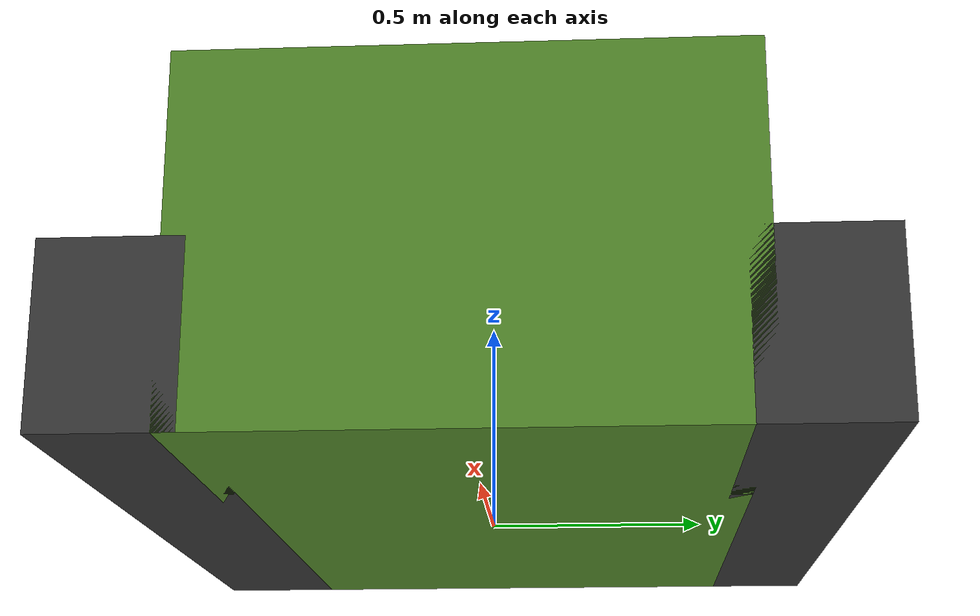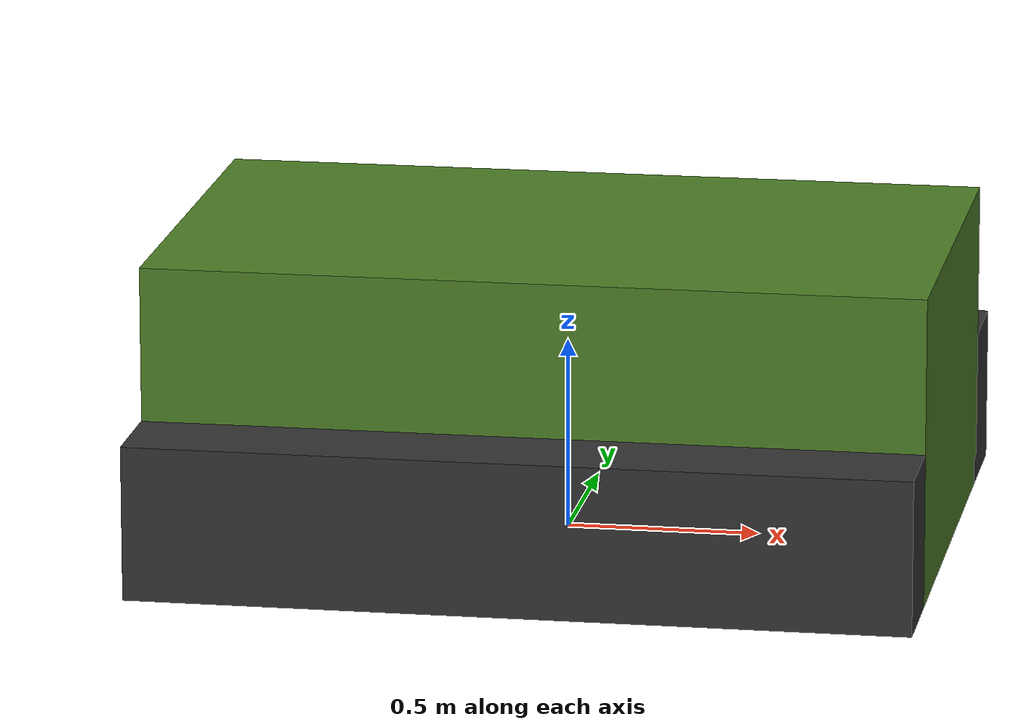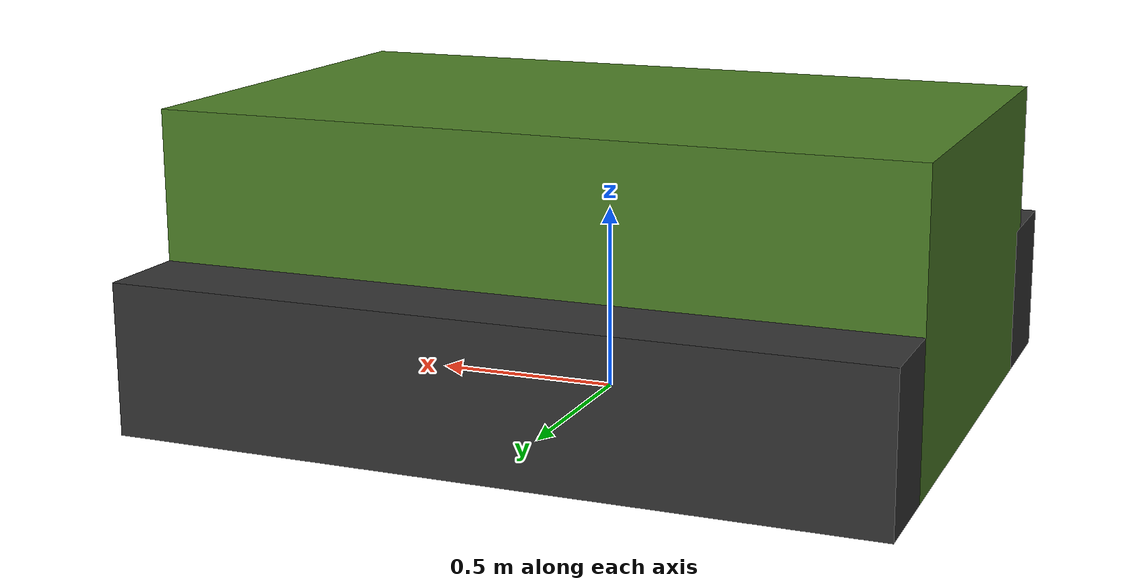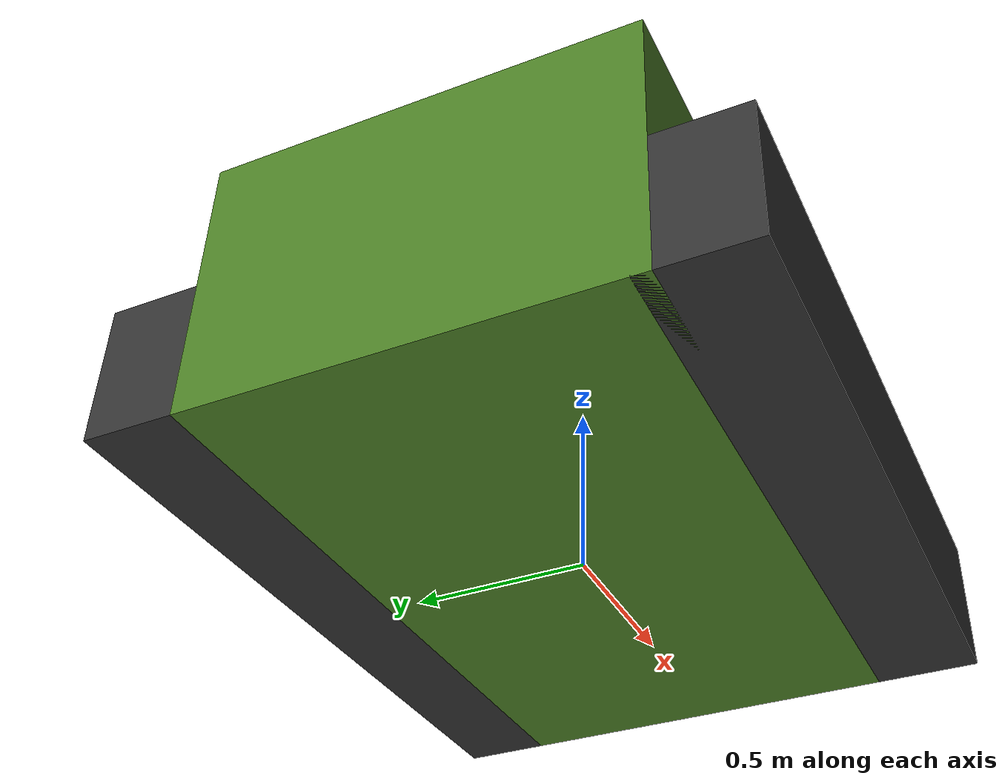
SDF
<?xml version="1.0"?>
<sdf version="1.9">
  <model name="tracked_vehicle">
    <static>false</static>

    <!-- ==================== 샤시 (차체) ==================== -->
    <link name="chassis">
      <pose>0 0 0.4 0 0 0</pose>
      <inertial>
        <mass>1000</mass>
        <inertia>
          <ixx>106.67</ixx>
          <iyy>353.33</iyy>
          <izz>426.67</izz>
          <ixy>0</ixy><ixz>0</ixz><iyz>0</iyz>
        </inertia>
      </inertial>
      <collision name="chassis_collision">
        <geometry>
          <box><size>2.0 1.2 0.8</size></box>
        </geometry>
      </collision>
      <visual name="chassis_visual">
        <geometry>
          <box><size>2.0 1.2 0.8</size></box>
        </geometry>
        <material>
          <ambient>0.2 0.4 0.1 1</ambient>
          <diffuse>0.3 0.5 0.15 1</diffuse>
        </material>
      </visual>

      <!-- ==================== 센서 ==================== -->

      <!-- NavSat (GPS) -->
      <sensor name="gps_sensor" type="navsat">
        <pose>0 0 0.4 0 0 0</pose>
        <always_on>true</always_on>
        <update_rate>10</update_rate>
        <topic>gps</topic>
        <navsat>
          <position_sensing>
            <horizontal>
              <noise type="gaussian">
                <mean>0</mean>
                <stddev>0.5</stddev>
              </noise>
            </horizontal>
            <vertical>
              <noise type="gaussian">
                <mean>0</mean>
                <stddev>1.0</stddev>
              </noise>
            </vertical>
          </position_sensing>
        </navsat>
      </sensor>

      <!-- IMU (bias 모델 추가) -->
      <sensor name="imu_sensor" type="imu">
        <pose>0 0 0 0 0 0</pose>
        <always_on>true</always_on>
        <update_rate>100</update_rate>
        <topic>imu</topic>
        <imu>
          <angular_velocity>
            <x>
              <noise type="gaussian">
                <mean>0</mean>
                <stddev>0.01</stddev>
                <bias_mean>0.0001</bias_mean>
                <bias_stddev>0.00001</bias_stddev>
                <dynamic_bias_stddev>0.00001</dynamic_bias_stddev>
                <dynamic_bias_correlation_time>300</dynamic_bias_correlation_time>
              </noise>
            </x>
            <y>
              <noise type="gaussian">
                <mean>0</mean>
                <stddev>0.01</stddev>
                <bias_mean>0.0001</bias_mean>
                <bias_stddev>0.00001</bias_stddev>
                <dynamic_bias_stddev>0.00001</dynamic_bias_stddev>
                <dynamic_bias_correlation_time>300</dynamic_bias_correlation_time>
              </noise>
            </y>
            <z>
              <noise type="gaussian">
                <mean>0</mean>
                <stddev>0.01</stddev>
                <bias_mean>0.0001</bias_mean>
                <bias_stddev>0.00001</bias_stddev>
                <dynamic_bias_stddev>0.00001</dynamic_bias_stddev>
                <dynamic_bias_correlation_time>300</dynamic_bias_correlation_time>
              </noise>
            </z>
          </angular_velocity>
          <linear_acceleration>
            <x>
              <noise type="gaussian">
                <mean>0</mean>
                <stddev>0.1</stddev>
                <bias_mean>0.01</bias_mean>
                <bias_stddev>0.001</bias_stddev>
                <dynamic_bias_stddev>0.001</dynamic_bias_stddev>
                <dynamic_bias_correlation_time>300</dynamic_bias_correlation_time>
              </noise>
            </x>
            <y>
              <noise type="gaussian">
                <mean>0</mean>
                <stddev>0.1</stddev>
                <bias_mean>0.01</bias_mean>
                <bias_stddev>0.001</bias_stddev>
                <dynamic_bias_stddev>0.001</dynamic_bias_stddev>
                <dynamic_bias_correlation_time>300</dynamic_bias_correlation_time>
              </noise>
            </y>
            <z>
              <noise type="gaussian">
                <mean>0</mean>
                <stddev>0.1</stddev>
                <bias_mean>0.01</bias_mean>
                <bias_stddev>0.001</bias_stddev>
                <dynamic_bias_stddev>0.001</dynamic_bias_stddev>
                <dynamic_bias_correlation_time>300</dynamic_bias_correlation_time>
              </noise>
            </z>
          </linear_acceleration>
        </imu>
      </sensor>

      <!-- 전방 카메라 (왜곡/노이즈 추가) -->
      <sensor name="front_camera" type="camera">
        <pose>1.0 0 0.5 0 0 0</pose>
        <always_on>true</always_on>
        <update_rate>15</update_rate>
        <topic>camera</topic>
        <camera>
          <horizontal_fov>1.3962634</horizontal_fov>
          <image>
            <width>640</width>
            <height>480</height>
            <format>R8G8B8</format>
          </image>
          <clip>
            <near>0.1</near>
            <far>100</far>
          </clip>
          <distortion>
            <k1>-0.25</k1>
            <k2>0.12</k2>
            <k3>0.0</k3>
            <p1>-0.00028</p1>
            <p2>-0.00005</p2>
            <center>0.5 0.5</center>
          </distortion>
          <noise>
            <type>gaussian</type>
            <mean>0</mean>
            <stddev>0.007</stddev>
          </noise>
          <camera_info_topic>camera_info</camera_info_topic>
        </camera>
      </sensor>

      <!-- LiDAR (노이즈 모델 추가) -->
      <sensor name="lidar_sensor" type="gpu_lidar">
        <pose>0.5 0 0.8 0 0 0</pose>
        <always_on>true</always_on>
        <update_rate>10</update_rate>
        <topic>lidar</topic>
        <lidar>
          <scan>
            <horizontal>
              <samples>360</samples>
              <resolution>1</resolution>
              <min_angle>-3.14159</min_angle>
              <max_angle>3.14159</max_angle>
            </horizontal>
            <vertical>
              <samples>16</samples>
              <resolution>1</resolution>
              <min_angle>-0.2618</min_angle>
              <max_angle>0.2618</max_angle>
            </vertical>
          </scan>
          <range>
            <min>0.3</min>
            <max>50</max>
            <resolution>0.01</resolution>
          </range>
          <noise>
            <type>gaussian</type>
            <mean>0</mean>
            <stddev>0.02</stddev>
          </noise>
        </lidar>
      </sensor>
    </link>

    <!-- ==================== 좌측 트랙 ==================== -->
    <link name="left_track">
      <pose>0 0.7 0.2 0 0 0</pose>
      <inertial>
        <mass>50</mass>
        <inertia>
          <ixx>1.04</ixx>
          <iyy>8.58</iyy>
          <izz>8.58</izz>
          <ixy>0</ixy><ixz>0</ixz><iyz>0</iyz>
        </inertia>
      </inertial>
      <collision name="left_track_collision">
        <geometry>
          <box><size>2.0 0.3 0.4</size></box>
        </geometry>
        <surface>
          <friction>
            <ode>
              <mu>1.0</mu>
              <mu2>1.0</mu2>
            </ode>
          </friction>
          <contact>
            <ode>
              <min_depth>0.01</min_depth>
            </ode>
          </contact>
        </surface>
      </collision>
      <visual name="left_track_visual">
        <geometry>
          <box><size>2.0 0.3 0.4</size></box>
        </geometry>
        <material>
          <ambient>0.1 0.1 0.1 1</ambient>
          <diffuse>0.2 0.2 0.2 1</diffuse>
        </material>
      </visual>
    </link>

    <joint name="left_track_joint" type="revolute">
      <parent>chassis</parent>
      <child>left_track</child>
      <axis>
        <xyz>1 0 0</xyz>
        <limit>
          <lower>-1e16</lower>
          <upper>1e16</upper>
        </limit>
      </axis>
    </joint>

    <!-- ==================== 우측 트랙 ==================== -->
    <link name="right_track">
      <pose>0 -0.7 0.2 0 0 0</pose>
      <inertial>
        <mass>50</mass>
        <inertia>
          <ixx>1.04</ixx>
          <iyy>8.58</iyy>
          <izz>8.58</izz>
          <ixy>0</ixy><ixz>0</ixz><iyz>0</iyz>
        </inertia>
      </inertial>
      <collision name="right_track_collision">
        <geometry>
          <box><size>2.0 0.3 0.4</size></box>
        </geometry>
        <surface>
          <friction>
            <ode>
              <mu>1.0</mu>
              <mu2>1.0</mu2>
            </ode>
          </friction>
          <contact>
            <ode>
              <min_depth>0.01</min_depth>
            </ode>
          </contact>
        </surface>
      </collision>
      <visual name="right_track_visual">
        <geometry>
          <box><size>2.0 0.3 0.4</size></box>
        </geometry>
        <material>
          <ambient>0.1 0.1 0.1 1</ambient>
          <diffuse>0.2 0.2 0.2 1</diffuse>
        </material>
      </visual>
    </link>

    <joint name="right_track_joint" type="revolute">
      <parent>chassis</parent>
      <child>right_track</child>
      <axis>
        <xyz>1 0 0</xyz>
        <limit>
          <lower>-1e16</lower>
          <upper>1e16</upper>
        </limit>
      </axis>
    </joint>

    <!-- ==================== 플러그인 ==================== -->

    <!-- TrackedVehicle 플러그인: cmd_vel → 좌/우 트랙 속도 변환 -->
    <plugin
      filename="gz-sim-tracked-vehicle-system"
      name="gz::sim::systems::TrackedVehicle">
      <left_track><link>left_track</link></left_track>
      <right_track><link>right_track</link></right_track>
      <tracks_separation>1.4</tracks_separation>
      <track_surface_radius>0.2</track_surface_radius>
      <steering_efficiency>0.8</steering_efficiency>
      <topic>cmd_vel</topic>
    </plugin>

    <!-- TrackController 플러그인: 트랙 접촉면 속도 제어 (선행연구에서 누락 발견) -->
    <plugin
      filename="gz-sim-track-controller-system"
      name="gz::sim::systems::TrackController">
      <link>left_track</link>
      <min_velocity>-3.0</min_velocity>
      <max_velocity>3.0</max_velocity>
      <min_acceleration>-5.0</min_acceleration>
      <max_acceleration>5.0</max_acceleration>
    </plugin>
    <plugin
      filename="gz-sim-track-controller-system"
      name="gz::sim::systems::TrackController">
      <link>right_track</link>
      <min_velocity>-3.0</min_velocity>
      <max_velocity>3.0</max_velocity>
      <min_acceleration>-5.0</min_acceleration>
      <max_acceleration>5.0</max_acceleration>
    </plugin>

    <!-- Odometry 플러그인 -->
    <plugin
      filename="gz-sim-odometry-publisher-system"
      name="gz::sim::systems::OdometryPublisher">
      <odom_topic>odometry</odom_topic>
      <odom_frame>odom</odom_frame>
      <robot_base_frame>chassis</robot_base_frame>
      <dimensions>3</dimensions>
    </plugin>

  </model>
</sdf>
